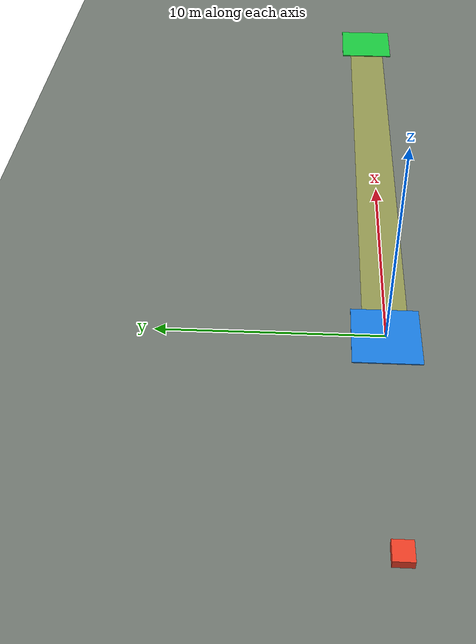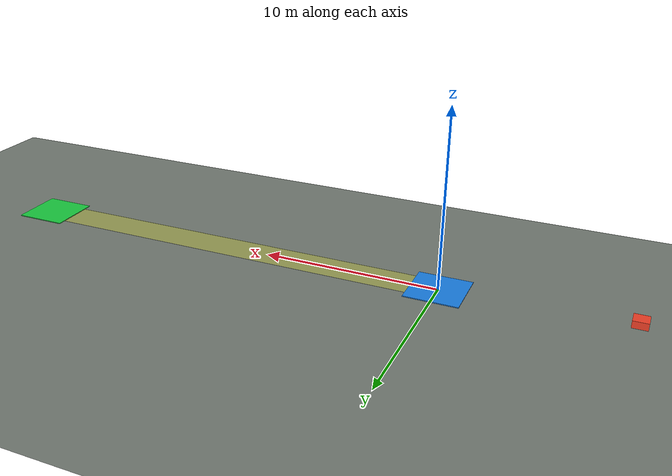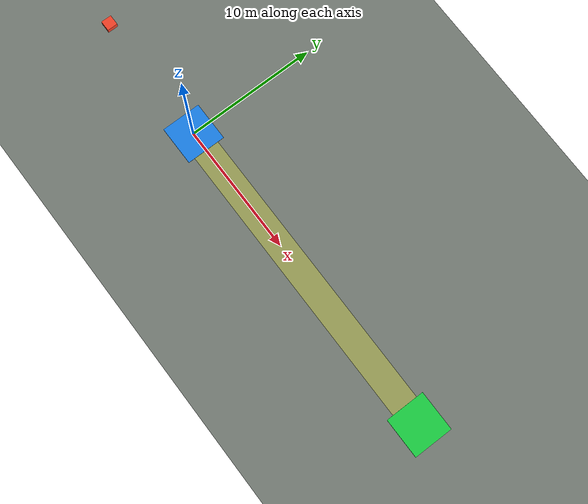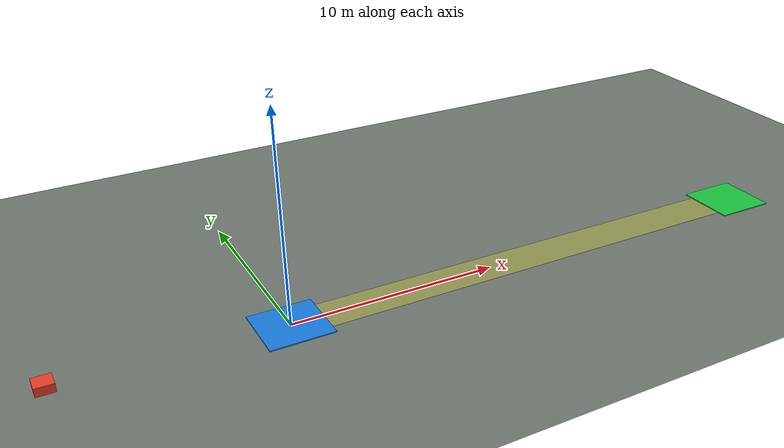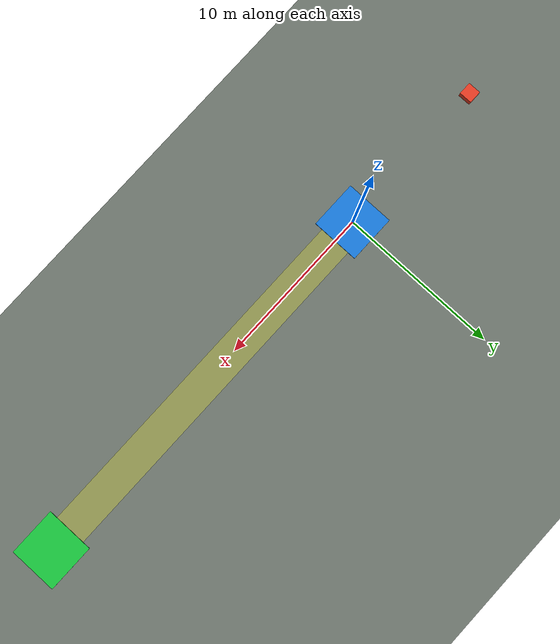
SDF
<?xml version="1.0" ?>
<sdf version="1.9">
  <world name="delivery_state_driven">
    <physics name="1ms" type="ignored">
      <max_step_size>0.001</max_step_size>
      <real_time_factor>1.0</real_time_factor>
    </physics>
    <plugin filename="gz-sim-physics-system" name="gz::sim::systems::Physics" />
    <plugin filename="gz-sim-scene-broadcaster-system" name="gz::sim::systems::SceneBroadcaster" />

    <gravity>0 0 -9.8</gravity>
    <scene>
      <ambient>0.4 0.4 0.4 1</ambient>
      <background>0.7 0.8 1.0 1</background>
    </scene>

    <model name="ground_plane">
      <static>true</static>
      <link name="link">
        <collision name="collision">
          <geometry>
            <plane>
              <normal>0 0 1</normal>
              <size>80 80</size>
            </plane>
          </geometry>
        </collision>
        <visual name="visual">
          <geometry>
            <plane>
              <normal>0 0 1</normal>
              <size>80 80</size>
            </plane>
          </geometry>
          <material>
            <ambient>0.45 0.48 0.45 1</ambient>
            <diffuse>0.45 0.48 0.45 1</diffuse>
          </material>
        </visual>
      </link>
    </model>

    <model name="pickup_pad_a">
      <static>true</static>
      <pose>0 0 0.025 0 0 0</pose>
      <link name="link">
        <visual name="visual">
          <geometry>
            <box>
              <size>3 3 0.05</size>
            </box>
          </geometry>
          <material>
            <ambient>0.1 0.5 0.9 1</ambient>
            <diffuse>0.1 0.5 0.9 1</diffuse>
          </material>
        </visual>
      </link>
    </model>

    <model name="dropoff_pad_b">
      <static>true</static>
      <pose>25 0 0.025 0 0 0</pose>
      <link name="link">
        <visual name="visual">
          <geometry>
            <box>
              <size>3 3 0.05</size>
            </box>
          </geometry>
          <material>
            <ambient>0.1 0.8 0.25 1</ambient>
            <diffuse>0.1 0.8 0.25 1</diffuse>
          </material>
        </visual>
      </link>
    </model>

    <model name="safe_corridor_pickup_to_dropoff">
      <static>true</static>
      <pose>12.5 0 0.01 0 0 0</pose>
      <link name="link">
        <visual name="visual">
          <geometry>
            <box>
              <size>25 2 0.02</size>
            </box>
          </geometry>
          <material>
            <ambient>0.9 0.9 0.15 0.35</ambient>
            <diffuse>0.9 0.9 0.15 0.35</diffuse>
          </material>
        </visual>
      </link>
    </model>

    <model name="delivery_vehicle_state">
      <pose>-10 0 0.5 0 0 0</pose>
      <link name="body">
        <inertial>
          <mass>1.0</mass>
          <inertia>
            <ixx>0.1</ixx>
            <iyy>0.1</iyy>
            <izz>0.1</izz>
          </inertia>
        </inertial>
        <collision name="collision">
          <geometry>
            <box>
              <size>0.8 0.8 0.4</size>
            </box>
          </geometry>
        </collision>
        <visual name="visual">
          <geometry>
            <box>
              <size>0.8 0.8 0.4</size>
            </box>
          </geometry>
          <material>
            <ambient>0.95 0.25 0.15 1</ambient>
            <diffuse>0.95 0.25 0.15 1</diffuse>
          </material>
        </visual>
      </link>
      <plugin filename="gz-sim-trajectory-follower-system" name="gz::sim::systems::TrajectoryFollower">
        <link_name>body</link_name>
        <loop>false</loop>
        <force>20</force>
        <torque>20</torque>
        <waypoints>
          <waypoint>-10 0</waypoint>
          <waypoint>0 0</waypoint>
          <waypoint>5 0</waypoint>
          <waypoint>24 0</waypoint>
          <waypoint>25 0</waypoint>
        </waypoints>
      </plugin>
    </model>
  </world>
</sdf>
